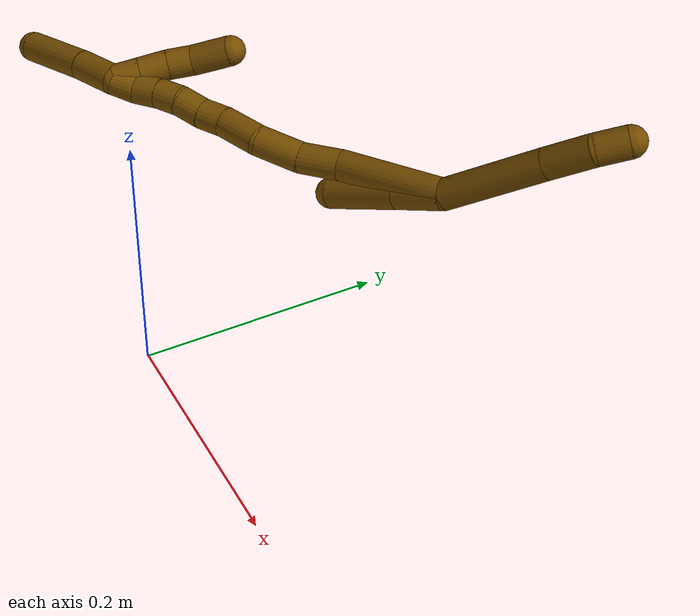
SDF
<sdf version="1.7">
 <world name="default">
  <model name="12">
   <static>0</static>
   <link name="12">
    <collision name="collision-cylinder-e_1_2_8">
     <pose>0.00423 -0.001537 0.042815 0.035894 0.098423 0.001768</pose>
     <geometry><cylinder><radius>0.0125</radius><length>0.086103</length></cylinder></geometry>
     <surface>
      <friction><ode><mu>1.16</mu><mu2>1.16</mu2><slip1>0</slip1><slip2>0</slip2></ode></friction>
      <contact><ode><kp>1e+06</kp><kd>1</kd><max_vel>0</max_vel><min_depth>0.001</min_depth></ode></contact>
     </surface>
    </collision>
    <visual name="visual-cylinder-e_1_2_8">
     <pose>0.00423 -0.001537 0.042815 0.035894 0.098423 0.001768</pose>
     <geometry><cylinder><radius>0.0125</radius><length>0.086103</length></cylinder></geometry>
     <material><ambient>0.466667 0.301961 0 1</ambient></material>
    </visual>
    <collision name="collision-cylinder-e_2_8_9">
     <pose>0.010668 -0.00358 0.104882 0.026211 0.114095 0.001497</pose>
     <geometry><cylinder><radius>0.0125</radius><length>0.038768</length></cylinder></geometry>
     <surface>
      <friction><ode><mu>1.16</mu><mu2>1.16</mu2><slip1>0</slip1><slip2>0</slip2></ode></friction>
      <contact><ode><kp>1e+06</kp><kd>1</kd><max_vel>0</max_vel><min_depth>0.001</min_depth></ode></contact>
     </surface>
    </collision>
    <visual name="visual-cylinder-e_2_8_9">
     <pose>0.010668 -0.00358 0.104882 0.026211 0.114095 0.001497</pose>
     <geometry><cylinder><radius>0.0125</radius><length>0.038768</length></cylinder></geometry>
     <material><ambient>0.466667 0.301961 0 1</ambient></material>
    </visual>
    <collision name="collision-cylinder-e_3_9_6">
     <pose>0.010629 -0.002507 0.136395 -0.127954 -0.179699 0.011543</pose>
     <geometry><cylinder><radius>0.0125</radius><length>0.025129</length></cylinder></geometry>
     <surface>
      <friction><ode><mu>1.16</mu><mu2>1.16</mu2><slip1>0</slip1><slip2>0</slip2></ode></friction>
      <contact><ode><kp>1e+06</kp><kd>1</kd><max_vel>0</max_vel><min_depth>0.001</min_depth></ode></contact>
     </surface>
    </collision>
    <visual name="visual-cylinder-e_3_9_6">
     <pose>0.010629 -0.002507 0.136395 -0.127954 -0.179699 0.011543</pose>
     <geometry><cylinder><radius>0.0125</radius><length>0.025129</length></cylinder></geometry>
     <material><ambient>0.466667 0.301961 0 1</ambient></material>
    </visual>
    <collision name="collision-cylinder-e_1_2_10">
     <pose>-0.004433 -0.004155 -0.018913 2.92535 -0.225071 -1.61111</pose>
     <geometry><cylinder><radius>0.0125</radius><length>0.039731</length></cylinder></geometry>
     <surface>
      <friction><ode><mu>1.16</mu><mu2>1.16</mu2><slip1>0</slip1><slip2>0</slip2></ode></friction>
      <contact><ode><kp>1e+06</kp><kd>1</kd><max_vel>0</max_vel><min_depth>0.001</min_depth></ode></contact>
     </surface>
    </collision>
    <visual name="visual-cylinder-e_1_2_10">
     <pose>-0.004433 -0.004155 -0.018913 2.92535 -0.225071 -1.61111</pose>
     <geometry><cylinder><radius>0.0125</radius><length>0.039731</length></cylinder></geometry>
     <material><ambient>0.466667 0.301961 0 1</ambient></material>
    </visual>
    <collision name="collision-cylinder-e_2_10_5">
     <pose>-0.016021 -0.014111 -0.066519 2.94209 -0.239698 -1.75478</pose>
     <geometry><cylinder><radius>0.0125</radius><length>0.060269</length></cylinder></geometry>
     <surface>
      <friction><ode><mu>1.16</mu><mu2>1.16</mu2><slip1>0</slip1><slip2>0</slip2></ode></friction>
      <contact><ode><kp>1e+06</kp><kd>1</kd><max_vel>0</max_vel><min_depth>0.001</min_depth></ode></contact>
     </surface>
    </collision>
    <visual name="visual-cylinder-e_2_10_5">
     <pose>-0.016021 -0.014111 -0.066519 2.94209 -0.239698 -1.75478</pose>
     <geometry><cylinder><radius>0.0125</radius><length>0.060269</length></cylinder></geometry>
     <material><ambient>0.466667 0.301961 0 1</ambient></material>
    </visual>
    <collision name="collision-cylinder-e_1_2_11">
     <pose>-0.011349 -0.0195 -0.038567 2.67346 -0.256806 -0.992586</pose>
     <geometry><cylinder><radius>0.0125</radius><length>0.089364</length></cylinder></geometry>
     <surface>
      <friction><ode><mu>1.16</mu><mu2>1.16</mu2><slip1>0</slip1><slip2>0</slip2></ode></friction>
      <contact><ode><kp>1e+06</kp><kd>1</kd><max_vel>0</max_vel><min_depth>0.001</min_depth></ode></contact>
     </surface>
    </collision>
    <visual name="visual-cylinder-e_1_2_11">
     <pose>-0.011349 -0.0195 -0.038567 2.67346 -0.256806 -0.992586</pose>
     <geometry><cylinder><radius>0.0125</radius><length>0.089364</length></cylinder></geometry>
     <material><ambient>0.466667 0.301961 0 1</ambient></material>
    </visual>
    <collision name="collision-cylinder-e_2_11_12">
     <pose>-0.02363 -0.046674 -0.092253 2.67191 -0.054913 -0.228573</pose>
     <geometry><cylinder><radius>0.0125</radius><length>0.03396</length></cylinder></geometry>
     <surface>
      <friction><ode><mu>1.16</mu><mu2>1.16</mu2><slip1>0</slip1><slip2>0</slip2></ode></friction>
      <contact><ode><kp>1e+06</kp><kd>1</kd><max_vel>0</max_vel><min_depth>0.001</min_depth></ode></contact>
     </surface>
    </collision>
    <visual name="visual-cylinder-e_2_11_12">
     <pose>-0.02363 -0.046674 -0.092253 2.67191 -0.054913 -0.228573</pose>
     <geometry><cylinder><radius>0.0125</radius><length>0.03396</length></cylinder></geometry>
     <material><ambient>0.466667 0.301961 0 1</ambient></material>
    </visual>
    <collision name="collision-cylinder-e_3_12_13">
     <pose>-0.025634 -0.066089 -0.121683 2.45455 -0.057881 -0.161508</pose>
     <geometry><cylinder><radius>0.0125</radius><length>0.037085</length></cylinder></geometry>
     <surface>
      <friction><ode><mu>1.16</mu><mu2>1.16</mu2><slip1>0</slip1><slip2>0</slip2></ode></friction>
      <contact><ode><kp>1e+06</kp><kd>1</kd><max_vel>0</max_vel><min_depth>0.001</min_depth></ode></contact>
     </surface>
    </collision>
    <visual name="visual-cylinder-e_3_12_13">
     <pose>-0.025634 -0.066089 -0.121683 2.45455 -0.057881 -0.161508</pose>
     <geometry><cylinder><radius>0.0125</radius><length>0.037085</length></cylinder></geometry>
     <material><ambient>0.466667 0.301961 0 1</ambient></material>
    </visual>
    <collision name="collision-cylinder-e_4_13_14">
     <pose>-0.032786 -0.087727 -0.149117 2.49538 -0.354271 -0.98192</pose>
     <geometry><cylinder><radius>0.0125</radius><length>0.035048</length></cylinder></geometry>
     <surface>
      <friction><ode><mu>1.16</mu><mu2>1.16</mu2><slip1>0</slip1><slip2>0</slip2></ode></friction>
      <contact><ode><kp>1e+06</kp><kd>1</kd><max_vel>0</max_vel><min_depth>0.001</min_depth></ode></contact>
     </surface>
    </collision>
    <visual name="visual-cylinder-e_4_13_14">
     <pose>-0.032786 -0.087727 -0.149117 2.49538 -0.354271 -0.98192</pose>
     <geometry><cylinder><radius>0.0125</radius><length>0.035048</length></cylinder></geometry>
     <material><ambient>0.466667 0.301961 0 1</ambient></material>
    </visual>
    <collision name="collision-cylinder-e_5_14_15">
     <pose>-0.040971 -0.103372 -0.170937 2.55766 -0.199244 -0.642113</pose>
     <geometry><cylinder><radius>0.0125</radius><length>0.021272</length></cylinder></geometry>
     <surface>
      <friction><ode><mu>1.16</mu><mu2>1.16</mu2><slip1>0</slip1><slip2>0</slip2></ode></friction>
      <contact><ode><kp>1e+06</kp><kd>1</kd><max_vel>0</max_vel><min_depth>0.001</min_depth></ode></contact>
     </surface>
    </collision>
    <visual name="visual-cylinder-e_5_14_15">
     <pose>-0.040971 -0.103372 -0.170937 2.55766 -0.199244 -0.642113</pose>
     <geometry><cylinder><radius>0.0125</radius><length>0.021272</length></cylinder></geometry>
     <material><ambient>0.466667 0.301961 0 1</ambient></material>
    </visual>
    <collision name="collision-cylinder-e_6_15_16">
     <pose>-0.044918 -0.116587 -0.187263 2.36683 -0.170921 -0.413936</pose>
     <geometry><cylinder><radius>0.0125</radius><length>0.021667</length></cylinder></geometry>
     <surface>
      <friction><ode><mu>1.16</mu><mu2>1.16</mu2><slip1>0</slip1><slip2>0</slip2></ode></friction>
      <contact><ode><kp>1e+06</kp><kd>1</kd><max_vel>0</max_vel><min_depth>0.001</min_depth></ode></contact>
     </surface>
    </collision>
    <visual name="visual-cylinder-e_6_15_16">
     <pose>-0.044918 -0.116587 -0.187263 2.36683 -0.170921 -0.413936</pose>
     <geometry><cylinder><radius>0.0125</radius><length>0.021667</length></cylinder></geometry>
     <material><ambient>0.466667 0.301961 0 1</ambient></material>
    </visual>
    <collision name="collision-cylinder-e_7_16_17">
     <pose>-0.048813 -0.129416 -0.203305 2.57427 -0.202894 -0.671904</pose>
     <geometry><cylinder><radius>0.0125</radius><length>0.020369</length></cylinder></geometry>
     <surface>
      <friction><ode><mu>1.16</mu><mu2>1.16</mu2><slip1>0</slip1><slip2>0</slip2></ode></friction>
      <contact><ode><kp>1e+06</kp><kd>1</kd><max_vel>0</max_vel><min_depth>0.001</min_depth></ode></contact>
     </surface>
    </collision>
    <visual name="visual-cylinder-e_7_16_17">
     <pose>-0.048813 -0.129416 -0.203305 2.57427 -0.202894 -0.671904</pose>
     <geometry><cylinder><radius>0.0125</radius><length>0.020369</length></cylinder></geometry>
     <material><ambient>0.466667 0.301961 0 1</ambient></material>
    </visual>
    <collision name="collision-cylinder-e_8_17_18">
     <pose>-0.051892 -0.139671 -0.220948 2.65404 -0.097897 -0.388939</pose>
     <geometry><cylinder><radius>0.0125</radius><length>0.020996</length></cylinder></geometry>
     <surface>
      <friction><ode><mu>1.16</mu><mu2>1.16</mu2><slip1>0</slip1><slip2>0</slip2></ode></friction>
      <contact><ode><kp>1e+06</kp><kd>1</kd><max_vel>0</max_vel><min_depth>0.001</min_depth></ode></contact>
     </surface>
    </collision>
    <visual name="visual-cylinder-e_8_17_18">
     <pose>-0.051892 -0.139671 -0.220948 2.65404 -0.097897 -0.388939</pose>
     <geometry><cylinder><radius>0.0125</radius><length>0.020996</length></cylinder></geometry>
     <material><ambient>0.466667 0.301961 0 1</ambient></material>
    </visual>
    <collision name="collision-cylinder-e_9_18_1">
     <pose>-0.05218 -0.151278 -0.237715 2.41395 0.07296 0.19111</pose>
     <geometry><cylinder><radius>0.0125</radius><length>0.020238</length></cylinder></geometry>
     <surface>
      <friction><ode><mu>1.16</mu><mu2>1.16</mu2><slip1>0</slip1><slip2>0</slip2></ode></friction>
      <contact><ode><kp>1e+06</kp><kd>1</kd><max_vel>0</max_vel><min_depth>0.001</min_depth></ode></contact>
     </surface>
    </collision>
    <visual name="visual-cylinder-e_9_18_1">
     <pose>-0.05218 -0.151278 -0.237715 2.41395 0.07296 0.19111</pose>
     <geometry><cylinder><radius>0.0125</radius><length>0.020238</length></cylinder></geometry>
     <material><ambient>0.466667 0.301961 0 1</ambient></material>
    </visual>
    <collision name="collision-cylinder-e_1_1_19">
     <pose>-0.056457 -0.156208 -0.235593 -0.182534 -0.472033 0.044015</pose>
     <geometry><cylinder><radius>0.0125</radius><length>0.022055</length></cylinder></geometry>
     <surface>
      <friction><ode><mu>1.16</mu><mu2>1.16</mu2><slip1>0</slip1><slip2>0</slip2></ode></friction>
      <contact><ode><kp>1e+06</kp><kd>1</kd><max_vel>0</max_vel><min_depth>0.001</min_depth></ode></contact>
     </surface>
    </collision>
    <visual name="visual-cylinder-e_1_1_19">
     <pose>-0.056457 -0.156208 -0.235593 -0.182534 -0.472033 0.044015</pose>
     <geometry><cylinder><radius>0.0125</radius><length>0.022055</length></cylinder></geometry>
     <material><ambient>0.466667 0.301961 0 1</ambient></material>
    </visual>
    <collision name="collision-cylinder-e_2_19_20">
     <pose>-0.066893 -0.152498 -0.21554 -0.183289 -0.473892 0.044378</pose>
     <geometry><cylinder><radius>0.0125</radius><length>0.023762</length></cylinder></geometry>
     <surface>
      <friction><ode><mu>1.16</mu><mu2>1.16</mu2><slip1>0</slip1><slip2>0</slip2></ode></friction>
      <contact><ode><kp>1e+06</kp><kd>1</kd><max_vel>0</max_vel><min_depth>0.001</min_depth></ode></contact>
     </surface>
    </collision>
    <visual name="visual-cylinder-e_2_19_20">
     <pose>-0.066893 -0.152498 -0.21554 -0.183289 -0.473892 0.044378</pose>
     <geometry><cylinder><radius>0.0125</radius><length>0.023762</length></cylinder></geometry>
     <material><ambient>0.466667 0.301961 0 1</ambient></material>
    </visual>
    <collision name="collision-cylinder-e_3_20_21">
     <pose>-0.07624 -0.147994 -0.195672 -0.265592 -0.380354 0.051419</pose>
     <geometry><cylinder><radius>0.0125</radius><length>0.021145</length></cylinder></geometry>
     <surface>
      <friction><ode><mu>1.16</mu><mu2>1.16</mu2><slip1>0</slip1><slip2>0</slip2></ode></friction>
      <contact><ode><kp>1e+06</kp><kd>1</kd><max_vel>0</max_vel><min_depth>0.001</min_depth></ode></contact>
     </surface>
    </collision>
    <visual name="visual-cylinder-e_3_20_21">
     <pose>-0.07624 -0.147994 -0.195672 -0.265592 -0.380354 0.051419</pose>
     <geometry><cylinder><radius>0.0125</radius><length>0.021145</length></cylinder></geometry>
     <material><ambient>0.466667 0.301961 0 1</ambient></material>
    </visual>
    <collision name="collision-cylinder-e_4_21_4">
     <pose>-0.081894 -0.143497 -0.169884 -0.117213 -0.104869 0.006159</pose>
     <geometry><cylinder><radius>0.0125</radius><length>0.033038</length></cylinder></geometry>
     <surface>
      <friction><ode><mu>1.16</mu><mu2>1.16</mu2><slip1>0</slip1><slip2>0</slip2></ode></friction>
      <contact><ode><kp>1e+06</kp><kd>1</kd><max_vel>0</max_vel><min_depth>0.001</min_depth></ode></contact>
     </surface>
    </collision>
    <visual name="visual-cylinder-e_4_21_4">
     <pose>-0.081894 -0.143497 -0.169884 -0.117213 -0.104869 0.006159</pose>
     <geometry><cylinder><radius>0.0125</radius><length>0.033038</length></cylinder></geometry>
     <material><ambient>0.466667 0.301961 0 1</ambient></material>
    </visual>
    <collision name="collision-cylinder-e_1_1_22">
     <pose>-0.059105 -0.166842 -0.260221 2.6076 -0.414983 -1.31193</pose>
     <geometry><cylinder><radius>0.0125</radius><length>0.038008</length></cylinder></geometry>
     <surface>
      <friction><ode><mu>1.16</mu><mu2>1.16</mu2><slip1>0</slip1><slip2>0</slip2></ode></friction>
      <contact><ode><kp>1e+06</kp><kd>1</kd><max_vel>0</max_vel><min_depth>0.001</min_depth></ode></contact>
     </surface>
    </collision>
    <visual name="visual-cylinder-e_1_1_22">
     <pose>-0.059105 -0.166842 -0.260221 2.6076 -0.414983 -1.31193</pose>
     <geometry><cylinder><radius>0.0125</radius><length>0.038008</length></cylinder></geometry>
     <material><ambient>0.466667 0.301961 0 1</ambient></material>
    </visual>
    <collision name="collision-cylinder-e_2_22_3">
     <pose>-0.079216 -0.188421 -0.300564 2.67665 -0.413321 -1.44953</pose>
     <geometry><cylinder><radius>0.0125</radius><length>0.061992</length></cylinder></geometry>
     <surface>
      <friction><ode><mu>1.16</mu><mu2>1.16</mu2><slip1>0</slip1><slip2>0</slip2></ode></friction>
      <contact><ode><kp>1e+06</kp><kd>1</kd><max_vel>0</max_vel><min_depth>0.001</min_depth></ode></contact>
     </surface>
    </collision>
    <visual name="visual-cylinder-e_2_22_3">
     <pose>-0.079216 -0.188421 -0.300564 2.67665 -0.413321 -1.44953</pose>
     <geometry><cylinder><radius>0.0125</radius><length>0.061992</length></cylinder></geometry>
     <material><ambient>0.466667 0.301961 0 1</ambient></material>
    </visual>
    <collision name="collision-sphere-3">
     <pose>-0.091666 -0.201149 -0.325936 0 -0 0</pose>
     <geometry><sphere><radius>0.0125</radius></sphere></geometry>
     <surface>
      <friction><ode><mu>1.16</mu><mu2>1.16</mu2><slip1>0</slip1><slip2>0</slip2></ode></friction>
      <contact><ode><kp>1e+06</kp><kd>1</kd><max_vel>0</max_vel><min_depth>0.001</min_depth></ode></contact>
     </surface>
    </collision>
    <visual name="visual-sphere-3">
     <pose>-0.091666 -0.201149 -0.325936 0 -0 0</pose>
     <geometry><sphere><radius>0.0125</radius></sphere></geometry>
     <material><ambient>0.466667 0.301961 0 1</ambient></material>
    </visual>
    <collision name="collision-sphere-22">
     <pose>-0.066766 -0.175694 -0.275191 0 -0 0</pose>
     <geometry><sphere><radius>0.0125</radius></sphere></geometry>
     <surface>
      <friction><ode><mu>1.16</mu><mu2>1.16</mu2><slip1>0</slip1><slip2>0</slip2></ode></friction>
      <contact><ode><kp>1e+06</kp><kd>1</kd><max_vel>0</max_vel><min_depth>0.001</min_depth></ode></contact>
     </surface>
    </collision>
    <visual name="visual-sphere-22">
     <pose>-0.066766 -0.175694 -0.275191 0 -0 0</pose>
     <geometry><sphere><radius>0.0125</radius></sphere></geometry>
     <material><ambient>0.466667 0.301961 0 1</ambient></material>
    </visual>
    <collision name="collision-sphere-4">
     <pose>-0.083623 -0.141575 -0.153569 0 -0 0</pose>
     <geometry><sphere><radius>0.0125</radius></sphere></geometry>
     <surface>
      <friction><ode><mu>1.16</mu><mu2>1.16</mu2><slip1>0</slip1><slip2>0</slip2></ode></friction>
      <contact><ode><kp>1e+06</kp><kd>1</kd><max_vel>0</max_vel><min_depth>0.001</min_depth></ode></contact>
     </surface>
    </collision>
    <visual name="visual-sphere-4">
     <pose>-0.083623 -0.141575 -0.153569 0 -0 0</pose>
     <geometry><sphere><radius>0.0125</radius></sphere></geometry>
     <material><ambient>0.466667 0.301961 0 1</ambient></material>
    </visual>
    <collision name="collision-sphere-21">
     <pose>-0.080165 -0.145418 -0.1862 0 -0 0</pose>
     <geometry><sphere><radius>0.0125</radius></sphere></geometry>
     <surface>
      <friction><ode><mu>1.16</mu><mu2>1.16</mu2><slip1>0</slip1><slip2>0</slip2></ode></friction>
      <contact><ode><kp>1e+06</kp><kd>1</kd><max_vel>0</max_vel><min_depth>0.001</min_depth></ode></contact>
     </surface>
    </collision>
    <visual name="visual-sphere-21">
     <pose>-0.080165 -0.145418 -0.1862 0 -0 0</pose>
     <geometry><sphere><radius>0.0125</radius></sphere></geometry>
     <material><ambient>0.466667 0.301961 0 1</ambient></material>
    </visual>
    <collision name="collision-sphere-20">
     <pose>-0.072315 -0.150571 -0.205145 0 -0 0</pose>
     <geometry><sphere><radius>0.0125</radius></sphere></geometry>
     <surface>
      <friction><ode><mu>1.16</mu><mu2>1.16</mu2><slip1>0</slip1><slip2>0</slip2></ode></friction>
      <contact><ode><kp>1e+06</kp><kd>1</kd><max_vel>0</max_vel><min_depth>0.001</min_depth></ode></contact>
     </surface>
    </collision>
    <visual name="visual-sphere-20">
     <pose>-0.072315 -0.150571 -0.205145 0 -0 0</pose>
     <geometry><sphere><radius>0.0125</radius></sphere></geometry>
     <material><ambient>0.466667 0.301961 0 1</ambient></material>
    </visual>
    <collision name="collision-sphere-5">
     <pose>-0.023175 -0.019913 -0.095212 0 -0 0</pose>
     <geometry><sphere><radius>0.0125</radius></sphere></geometry>
     <surface>
      <friction><ode><mu>1.16</mu><mu2>1.16</mu2><slip1>0</slip1><slip2>0</slip2></ode></friction>
      <contact><ode><kp>1e+06</kp><kd>1</kd><max_vel>0</max_vel><min_depth>0.001</min_depth></ode></contact>
     </surface>
    </collision>
    <visual name="visual-sphere-5">
     <pose>-0.023175 -0.019913 -0.095212 0 -0 0</pose>
     <geometry><sphere><radius>0.0125</radius></sphere></geometry>
     <material><ambient>0.466667 0.301961 0 1</ambient></material>
    </visual>
    <collision name="collision-sphere-10">
     <pose>-0.008867 -0.00831 -0.037827 0 -0 0</pose>
     <geometry><sphere><radius>0.0125</radius></sphere></geometry>
     <surface>
      <friction><ode><mu>1.16</mu><mu2>1.16</mu2><slip1>0</slip1><slip2>0</slip2></ode></friction>
      <contact><ode><kp>1e+06</kp><kd>1</kd><max_vel>0</max_vel><min_depth>0.001</min_depth></ode></contact>
     </surface>
    </collision>
    <visual name="visual-sphere-10">
     <pose>-0.008867 -0.00831 -0.037827 0 -0 0</pose>
     <geometry><sphere><radius>0.0125</radius></sphere></geometry>
     <material><ambient>0.466667 0.301961 0 1</ambient></material>
    </visual>
    <collision name="collision-sphere-6">
     <pose>0.008383 -0.000929 0.148656 0 -0 0</pose>
     <geometry><sphere><radius>0.0125</radius></sphere></geometry>
     <surface>
      <friction><ode><mu>1.16</mu><mu2>1.16</mu2><slip1>0</slip1><slip2>0</slip2></ode></friction>
      <contact><ode><kp>1e+06</kp><kd>1</kd><max_vel>0</max_vel><min_depth>0.001</min_depth></ode></contact>
     </surface>
    </collision>
    <visual name="visual-sphere-6">
     <pose>0.008383 -0.000929 0.148656 0 -0 0</pose>
     <geometry><sphere><radius>0.0125</radius></sphere></geometry>
     <material><ambient>0.466667 0.301961 0 1</ambient></material>
    </visual>
    <collision name="collision-sphere-9">
     <pose>0.012875 -0.004084 0.124134 0 -0 0</pose>
     <geometry><sphere><radius>0.0125</radius></sphere></geometry>
     <surface>
      <friction><ode><mu>1.16</mu><mu2>1.16</mu2><slip1>0</slip1><slip2>0</slip2></ode></friction>
      <contact><ode><kp>1e+06</kp><kd>1</kd><max_vel>0</max_vel><min_depth>0.001</min_depth></ode></contact>
     </surface>
    </collision>
    <visual name="visual-sphere-9">
     <pose>0.012875 -0.004084 0.124134 0 -0 0</pose>
     <geometry><sphere><radius>0.0125</radius></sphere></geometry>
     <material><ambient>0.466667 0.301961 0 1</ambient></material>
    </visual>
    <collision name="collision-sphere-2">
     <geometry><sphere><radius>0.0125</radius></sphere></geometry>
     <surface>
      <friction><ode><mu>1.16</mu><mu2>1.16</mu2><slip1>0</slip1><slip2>0</slip2></ode></friction>
      <contact><ode><kp>1e+06</kp><kd>1</kd><max_vel>0</max_vel><min_depth>0.001</min_depth></ode></contact>
     </surface>
    </collision>
    <visual name="visual-sphere-2">
     <geometry><sphere><radius>0.0125</radius></sphere></geometry>
     <material><ambient>0.466667 0.301961 0 1</ambient></material>
    </visual>
    <collision name="collision-sphere-19">
     <pose>-0.061471 -0.154425 -0.225934 0 -0 0</pose>
     <geometry><sphere><radius>0.0125</radius></sphere></geometry>
     <surface>
      <friction><ode><mu>1.16</mu><mu2>1.16</mu2><slip1>0</slip1><slip2>0</slip2></ode></friction>
      <contact><ode><kp>1e+06</kp><kd>1</kd><max_vel>0</max_vel><min_depth>0.001</min_depth></ode></contact>
     </surface>
    </collision>
    <visual name="visual-sphere-19">
     <pose>-0.061471 -0.154425 -0.225934 0 -0 0</pose>
     <geometry><sphere><radius>0.0125</radius></sphere></geometry>
     <material><ambient>0.466667 0.301961 0 1</ambient></material>
    </visual>
    <collision name="collision-sphere-8">
     <pose>0.008461 -0.003075 0.085631 0 -0 0</pose>
     <geometry><sphere><radius>0.0125</radius></sphere></geometry>
     <surface>
      <friction><ode><mu>1.16</mu><mu2>1.16</mu2><slip1>0</slip1><slip2>0</slip2></ode></friction>
      <contact><ode><kp>1e+06</kp><kd>1</kd><max_vel>0</max_vel><min_depth>0.001</min_depth></ode></contact>
     </surface>
    </collision>
    <visual name="visual-sphere-8">
     <pose>0.008461 -0.003075 0.085631 0 -0 0</pose>
     <geometry><sphere><radius>0.0125</radius></sphere></geometry>
     <material><ambient>0.466667 0.301961 0 1</ambient></material>
    </visual>
    <collision name="collision-sphere-11">
     <pose>-0.022698 -0.039001 -0.077134 0 -0 0</pose>
     <geometry><sphere><radius>0.0125</radius></sphere></geometry>
     <surface>
      <friction><ode><mu>1.16</mu><mu2>1.16</mu2><slip1>0</slip1><slip2>0</slip2></ode></friction>
      <contact><ode><kp>1e+06</kp><kd>1</kd><max_vel>0</max_vel><min_depth>0.001</min_depth></ode></contact>
     </surface>
    </collision>
    <visual name="visual-sphere-11">
     <pose>-0.022698 -0.039001 -0.077134 0 -0 0</pose>
     <geometry><sphere><radius>0.0125</radius></sphere></geometry>
     <material><ambient>0.466667 0.301961 0 1</ambient></material>
    </visual>
    <collision name="collision-sphere-12">
     <pose>-0.024562 -0.054348 -0.107371 0 -0 0</pose>
     <geometry><sphere><radius>0.0125</radius></sphere></geometry>
     <surface>
      <friction><ode><mu>1.16</mu><mu2>1.16</mu2><slip1>0</slip1><slip2>0</slip2></ode></friction>
      <contact><ode><kp>1e+06</kp><kd>1</kd><max_vel>0</max_vel><min_depth>0.001</min_depth></ode></contact>
     </surface>
    </collision>
    <visual name="visual-sphere-12">
     <pose>-0.024562 -0.054348 -0.107371 0 -0 0</pose>
     <geometry><sphere><radius>0.0125</radius></sphere></geometry>
     <material><ambient>0.466667 0.301961 0 1</ambient></material>
    </visual>
    <collision name="collision-sphere-13">
     <pose>-0.026707 -0.07783 -0.135995 0 -0 0</pose>
     <geometry><sphere><radius>0.0125</radius></sphere></geometry>
     <surface>
      <friction><ode><mu>1.16</mu><mu2>1.16</mu2><slip1>0</slip1><slip2>0</slip2></ode></friction>
      <contact><ode><kp>1e+06</kp><kd>1</kd><max_vel>0</max_vel><min_depth>0.001</min_depth></ode></contact>
     </surface>
    </collision>
    <visual name="visual-sphere-13">
     <pose>-0.026707 -0.07783 -0.135995 0 -0 0</pose>
     <geometry><sphere><radius>0.0125</radius></sphere></geometry>
     <material><ambient>0.466667 0.301961 0 1</ambient></material>
    </visual>
    <collision name="collision-sphere-14">
     <pose>-0.038865 -0.097624 -0.162238 0 -0 0</pose>
     <geometry><sphere><radius>0.0125</radius></sphere></geometry>
     <surface>
      <friction><ode><mu>1.16</mu><mu2>1.16</mu2><slip1>0</slip1><slip2>0</slip2></ode></friction>
      <contact><ode><kp>1e+06</kp><kd>1</kd><max_vel>0</max_vel><min_depth>0.001</min_depth></ode></contact>
     </surface>
    </collision>
    <visual name="visual-sphere-14">
     <pose>-0.038865 -0.097624 -0.162238 0 -0 0</pose>
     <geometry><sphere><radius>0.0125</radius></sphere></geometry>
     <material><ambient>0.466667 0.301961 0 1</ambient></material>
    </visual>
    <collision name="collision-sphere-15">
     <pose>-0.043076 -0.109119 -0.179635 0 -0 0</pose>
     <geometry><sphere><radius>0.0125</radius></sphere></geometry>
     <surface>
      <friction><ode><mu>1.16</mu><mu2>1.16</mu2><slip1>0</slip1><slip2>0</slip2></ode></friction>
      <contact><ode><kp>1e+06</kp><kd>1</kd><max_vel>0</max_vel><min_depth>0.001</min_depth></ode></contact>
     </surface>
    </collision>
    <visual name="visual-sphere-15">
     <pose>-0.043076 -0.109119 -0.179635 0 -0 0</pose>
     <geometry><sphere><radius>0.0125</radius></sphere></geometry>
     <material><ambient>0.466667 0.301961 0 1</ambient></material>
    </visual>
    <collision name="collision-sphere-16">
     <pose>-0.046761 -0.124055 -0.194892 0 -0 0</pose>
     <geometry><sphere><radius>0.0125</radius></sphere></geometry>
     <surface>
      <friction><ode><mu>1.16</mu><mu2>1.16</mu2><slip1>0</slip1><slip2>0</slip2></ode></friction>
      <contact><ode><kp>1e+06</kp><kd>1</kd><max_vel>0</max_vel><min_depth>0.001</min_depth></ode></contact>
     </surface>
    </collision>
    <visual name="visual-sphere-16">
     <pose>-0.046761 -0.124055 -0.194892 0 -0 0</pose>
     <geometry><sphere><radius>0.0125</radius></sphere></geometry>
     <material><ambient>0.466667 0.301961 0 1</ambient></material>
    </visual>
    <collision name="collision-sphere-17">
     <pose>-0.050866 -0.134777 -0.211718 0 -0 0</pose>
     <geometry><sphere><radius>0.0125</radius></sphere></geometry>
     <surface>
      <friction><ode><mu>1.16</mu><mu2>1.16</mu2><slip1>0</slip1><slip2>0</slip2></ode></friction>
      <contact><ode><kp>1e+06</kp><kd>1</kd><max_vel>0</max_vel><min_depth>0.001</min_depth></ode></contact>
     </surface>
    </collision>
    <visual name="visual-sphere-17">
     <pose>-0.050866 -0.134777 -0.211718 0 -0 0</pose>
     <geometry><sphere><radius>0.0125</radius></sphere></geometry>
     <material><ambient>0.466667 0.301961 0 1</ambient></material>
    </visual>
    <collision name="collision-sphere-18">
     <pose>-0.052918 -0.144566 -0.230179 0 -0 0</pose>
     <geometry><sphere><radius>0.0125</radius></sphere></geometry>
     <surface>
      <friction><ode><mu>1.16</mu><mu2>1.16</mu2><slip1>0</slip1><slip2>0</slip2></ode></friction>
      <contact><ode><kp>1e+06</kp><kd>1</kd><max_vel>0</max_vel><min_depth>0.001</min_depth></ode></contact>
     </surface>
    </collision>
    <visual name="visual-sphere-18">
     <pose>-0.052918 -0.144566 -0.230179 0 -0 0</pose>
     <geometry><sphere><radius>0.0125</radius></sphere></geometry>
     <material><ambient>0.466667 0.301961 0 1</ambient></material>
    </visual>
    <collision name="collision-sphere-1">
     <pose>-0.051443 -0.157991 -0.245251 0 -0 0</pose>
     <geometry><sphere><radius>0.0125</radius></sphere></geometry>
     <surface>
      <friction><ode><mu>1.16</mu><mu2>1.16</mu2><slip1>0</slip1><slip2>0</slip2></ode></friction>
      <contact><ode><kp>1e+06</kp><kd>1</kd><max_vel>0</max_vel><min_depth>0.001</min_depth></ode></contact>
     </surface>
    </collision>
    <visual name="visual-sphere-1">
     <pose>-0.051443 -0.157991 -0.245251 0 -0 0</pose>
     <geometry><sphere><radius>0.0125</radius></sphere></geometry>
     <material><ambient>0.466667 0.301961 0 1</ambient></material>
    </visual>
    <inertial>
     <pose>-0.031077 -0.075359 -0.106366 0 -0 0</pose>
     <mass>0.75</mass>
     <inertia><ixx>5e-06</ixx><ixy>0</ixy><ixz>0</ixz><iyy>-8.5e-05</iyy><iyz>0</iyz><izz>7.8e-05</izz></inertia>
    </inertial>
   </link>
   <pose>0.084916 0.214201 0.14436 -1.07156 -0.1949 -0.784877</pose>
  </model>
 </world>
</sdf>
